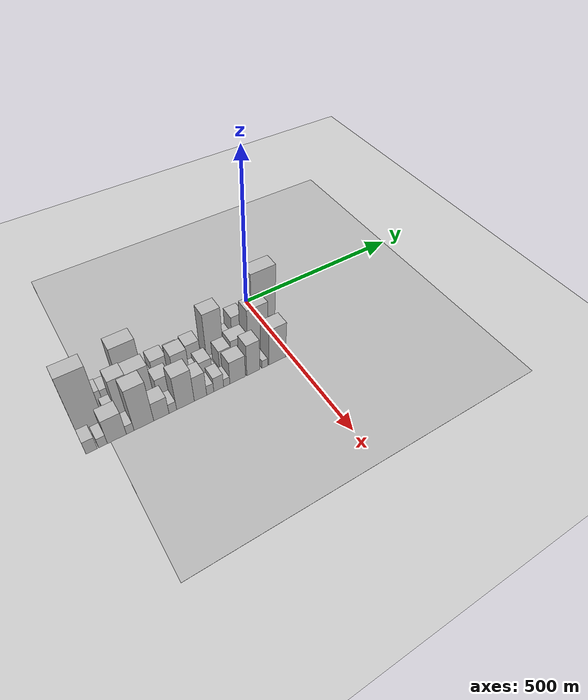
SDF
<sdf version="1.6">
 <world name="default">
  <include><name>ground_plane_1</name><uri>model://HANNAS_ground_plane</uri></include>
  <include>
   <name>ground_plane_2</name>
   <uri>model://HANNAS_ground_plane</uri>
   <pose>100 0 0  0 0 0</pose>
  </include>
  <model name="building_1">
   <static>1</static>
   <pose>100.0000 -544.7982 0 0.000000 0.000000 0.000000</pose>
   <link name="link">
    <pose>0 0 48.00 0 0 0</pose>
    <collision name="collision"><geometry><box><size>40.0000 30.4036 96.0000</size></box></geometry></collision>
    <visual name="visual">
     <cast_shadows>0</cast_shadows>
     <geometry><box><size>40.0000 30.4036 96.0000</size></box></geometry>
     <material>
      <script>
       <uri>model://HANNAS_wall/materials/scripts</uri>
       <uri>model://HANNAS_wall/materials/textures</uri>
       <name>vrc/HANNAS_wall</name>
      </script>
     </material>
    </visual>
   </link>
  </model>
  <model name="building_2">
   <static>1</static>
   <pose>100.0000 -515.6241 0 0.000000 0.000000 0.000000</pose>
   <link name="link">
    <pose>0 0 15.00 0 0 0</pose>
    <collision name="collision"><geometry><box><size>40.0000 17.9446 30.0000</size></box></geometry></collision>
    <visual name="visual">
     <cast_shadows>0</cast_shadows>
     <geometry><box><size>40.0000 17.9446 30.0000</size></box></geometry>
     <material>
      <script>
       <uri>model://HANNAS_wall/materials/scripts</uri>
       <uri>model://HANNAS_wall/materials/textures</uri>
       <name>vrc/HANNAS_wall</name>
      </script>
     </material>
    </visual>
   </link>
  </model>
  <model name="building_3">
   <static>1</static>
   <pose>100.0000 -491.0013 0 0.000000 0.000000 0.000000</pose>
   <link name="link">
    <pose>0 0 28.50 0 0 0</pose>
    <collision name="collision"><geometry><box><size>40.0000 31.3010 57.0000</size></box></geometry></collision>
    <visual name="visual">
     <cast_shadows>0</cast_shadows>
     <geometry><box><size>40.0000 31.3010 57.0000</size></box></geometry>
     <material>
      <script>
       <uri>model://HANNAS_wall/materials/scripts</uri>
       <uri>model://HANNAS_wall/materials/textures</uri>
       <name>vrc/HANNAS_wall</name>
      </script>
     </material>
    </visual>
   </link>
  </model>
  <model name="building_4">
   <static>1</static>
   <pose>100.0000 -459.8944 0 0.000000 0.000000 0.000000</pose>
   <link name="link">
    <pose>0 0 27.00 0 0 0</pose>
    <collision name="collision"><geometry><box><size>40.0000 30.9129 54.0000</size></box></geometry></collision>
    <visual name="visual">
     <cast_shadows>0</cast_shadows>
     <geometry><box><size>40.0000 30.9129 54.0000</size></box></geometry>
     <material>
      <script>
       <uri>model://HANNAS_wall/materials/scripts</uri>
       <uri>model://HANNAS_wall/materials/textures</uri>
       <name>vrc/HANNAS_wall</name>
      </script>
     </material>
    </visual>
   </link>
  </model>
  <model name="building_5">
   <static>1</static>
   <pose>100.0000 -438.7149 0 0.000000 0.000000 0.000000</pose>
   <link name="link">
    <pose>0 0 13.50 0 0 0</pose>
    <collision name="collision"><geometry><box><size>40.0000 11.4460 27.0000</size></box></geometry></collision>
    <visual name="visual">
     <cast_shadows>0</cast_shadows>
     <geometry><box><size>40.0000 11.4460 27.0000</size></box></geometry>
     <material>
      <script>
       <uri>model://HANNAS_wall/materials/scripts</uri>
       <uri>model://HANNAS_wall/materials/textures</uri>
       <name>vrc/HANNAS_wall</name>
      </script>
     </material>
    </visual>
   </link>
  </model>
  <model name="building_6">
   <static>1</static>
   <pose>100.0000 -396.0838 0 0.000000 0.000000 0.000000</pose>
   <link name="link">
    <pose>0 0 88.50 0 0 0</pose>
    <collision name="collision"><geometry><box><size>40.0000 63.8163 177.0000</size></box></geometry></collision>
    <visual name="visual">
     <cast_shadows>0</cast_shadows>
     <geometry><box><size>40.0000 63.8163 177.0000</size></box></geometry>
     <material>
      <script>
       <uri>model://HANNAS_wall/materials/scripts</uri>
       <uri>model://HANNAS_wall/materials/textures</uri>
       <name>vrc/HANNAS_wall</name>
      </script>
     </material>
    </visual>
   </link>
  </model>
  <model name="building_7">
   <static>1</static>
   <pose>100.0000 -349.6502 0 0.000000 0.000000 0.000000</pose>
   <link name="link">
    <pose>0 0 16.50 0 0 0</pose>
    <collision name="collision"><geometry><box><size>40.0000 17.0509 33.0000</size></box></geometry></collision>
    <visual name="visual">
     <cast_shadows>0</cast_shadows>
     <geometry><box><size>40.0000 17.0509 33.0000</size></box></geometry>
     <material>
      <script>
       <uri>model://HANNAS_wall/materials/scripts</uri>
       <uri>model://HANNAS_wall/materials/textures</uri>
       <name>vrc/HANNAS_wall</name>
      </script>
     </material>
    </visual>
   </link>
  </model>
  <model name="building_8">
   <static>1</static>
   <pose>100.0000 -319.9819 0 0.000000 0.000000 0.000000</pose>
   <link name="link">
    <pose>0 0 37.50 0 0 0</pose>
    <collision name="collision"><geometry><box><size>40.0000 42.2859 75.0000</size></box></geometry></collision>
    <visual name="visual">
     <cast_shadows>0</cast_shadows>
     <geometry><box><size>40.0000 42.2859 75.0000</size></box></geometry>
     <material>
      <script>
       <uri>model://HANNAS_wall/materials/scripts</uri>
       <uri>model://HANNAS_wall/materials/textures</uri>
       <name>vrc/HANNAS_wall</name>
      </script>
     </material>
    </visual>
   </link>
  </model>
  <model name="building_9">
   <static>1</static>
   <pose>100.0000 -273.5567 0 0.000000 0.000000 0.000000</pose>
   <link name="link">
    <pose>0 0 34.50 0 0 0</pose>
    <collision name="collision"><geometry><box><size>40.0000 34.5645 69.0000</size></box></geometry></collision>
    <visual name="visual">
     <cast_shadows>0</cast_shadows>
     <geometry><box><size>40.0000 34.5645 69.0000</size></box></geometry>
     <material>
      <script>
       <uri>model://HANNAS_wall/materials/scripts</uri>
       <uri>model://HANNAS_wall/materials/textures</uri>
       <name>vrc/HANNAS_wall</name>
      </script>
     </material>
    </visual>
   </link>
  </model>
  <model name="building_10">
   <static>1</static>
   <pose>100.0000 -226.8412 0 0.000000 0.000000 0.000000</pose>
   <link name="link">
    <pose>0 0 37.50 0 0 0</pose>
    <collision name="collision"><geometry><box><size>40.0000 38.8664 75.0000</size></box></geometry></collision>
    <visual name="visual">
     <cast_shadows>0</cast_shadows>
     <geometry><box><size>40.0000 38.8664 75.0000</size></box></geometry>
     <material>
      <script>
       <uri>model://HANNAS_wall/materials/scripts</uri>
       <uri>model://HANNAS_wall/materials/textures</uri>
       <name>vrc/HANNAS_wall</name>
      </script>
     </material>
    </visual>
   </link>
  </model>
  <model name="building_11">
   <static>1</static>
   <pose>100.0000 -202.9946 0 0.000000 0.000000 0.000000</pose>
   <link name="link">
    <pose>0 0 9.00 0 0 0</pose>
    <collision name="collision"><geometry><box><size>40.0000 8.8269 18.0000</size></box></geometry></collision>
    <visual name="visual">
     <cast_shadows>0</cast_shadows>
     <geometry><box><size>40.0000 8.8269 18.0000</size></box></geometry>
     <material>
      <script>
       <uri>model://HANNAS_wall/materials/scripts</uri>
       <uri>model://HANNAS_wall/materials/textures</uri>
       <name>vrc/HANNAS_wall</name>
      </script>
     </material>
    </visual>
   </link>
  </model>
  <model name="building_12">
   <static>1</static>
   <pose>100.0000 -166.4105 0 0.000000 0.000000 0.000000</pose>
   <link name="link">
    <pose>0 0 79.50 0 0 0</pose>
    <collision name="collision"><geometry><box><size>40.0000 50.3411 159.0000</size></box></geometry></collision>
    <visual name="visual">
     <cast_shadows>0</cast_shadows>
     <geometry><box><size>40.0000 50.3411 159.0000</size></box></geometry>
     <material>
      <script>
       <uri>model://HANNAS_wall/materials/scripts</uri>
       <uri>model://HANNAS_wall/materials/textures</uri>
       <name>vrc/HANNAS_wall</name>
      </script>
     </material>
    </visual>
   </link>
  </model>
  <model name="building_13">
   <static>1</static>
   <pose>100.0000 -127.2518 0 0.000000 0.000000 0.000000</pose>
   <link name="link">
    <pose>0 0 24.00 0 0 0</pose>
    <collision name="collision"><geometry><box><size>40.0000 27.9762 48.0000</size></box></geometry></collision>
    <visual name="visual">
     <cast_shadows>0</cast_shadows>
     <geometry><box><size>40.0000 27.9762 48.0000</size></box></geometry>
     <material>
      <script>
       <uri>model://HANNAS_wall/materials/scripts</uri>
       <uri>model://HANNAS_wall/materials/textures</uri>
       <name>vrc/HANNAS_wall</name>
      </script>
     </material>
    </visual>
   </link>
  </model>
  <model name="building_14">
   <static>1</static>
   <pose>100.0000 -94.5568 0 0.000000 0.000000 0.000000</pose>
   <link name="link">
    <pose>0 0 52.50 0 0 0</pose>
    <collision name="collision"><geometry><box><size>40.0000 37.4138 105.0000</size></box></geometry></collision>
    <visual name="visual">
     <cast_shadows>0</cast_shadows>
     <geometry><box><size>40.0000 37.4138 105.0000</size></box></geometry>
     <material>
      <script>
       <uri>model://HANNAS_wall/materials/scripts</uri>
       <uri>model://HANNAS_wall/materials/textures</uri>
       <name>vrc/HANNAS_wall</name>
      </script>
     </material>
    </visual>
   </link>
  </model>
  <model name="building_15">
   <static>1</static>
   <pose>100.0000 -64.4042 0 0.000000 0.000000 0.000000</pose>
   <link name="link">
    <pose>0 0 21.00 0 0 0</pose>
    <collision name="collision"><geometry><box><size>40.0000 22.8915 42.0000</size></box></geometry></collision>
    <visual name="visual">
     <cast_shadows>0</cast_shadows>
     <geometry><box><size>40.0000 22.8915 42.0000</size></box></geometry>
     <material>
      <script>
       <uri>model://HANNAS_wall/materials/scripts</uri>
       <uri>model://HANNAS_wall/materials/textures</uri>
       <name>vrc/HANNAS_wall</name>
      </script>
     </material>
    </visual>
   </link>
  </model>
  <model name="building_16">
   <static>1</static>
   <pose>100.0000 -16.2059 0 0.000000 0.000000 0.000000</pose>
   <link name="link">
    <pose>0 0 112.50 0 0 0</pose>
    <collision name="collision"><geometry><box><size>40.0000 73.5050 225.0000</size></box></geometry></collision>
    <visual name="visual">
     <cast_shadows>0</cast_shadows>
     <geometry><box><size>40.0000 73.5050 225.0000</size></box></geometry>
     <material>
      <script>
       <uri>model://HANNAS_wall/materials/scripts</uri>
       <uri>model://HANNAS_wall/materials/textures</uri>
       <name>vrc/HANNAS_wall</name>
      </script>
     </material>
    </visual>
   </link>
  </model>
  <model name="building_33">
   <static>1</static>
   <pose>155.0000 -526.5621 0 0.000000 0.000000 0.000000</pose>
   <link name="link">
    <pose>0 0 111.00 0 0 0</pose>
    <collision name="collision"><geometry><box><size>40.0000 66.8757 222.0000</size></box></geometry></collision>
    <visual name="visual">
     <cast_shadows>0</cast_shadows>
     <geometry><box><size>40.0000 66.8757 222.0000</size></box></geometry>
     <material>
      <script>
       <uri>model://HANNAS_wall/materials/scripts</uri>
       <uri>model://HANNAS_wall/materials/textures</uri>
       <name>vrc/HANNAS_wall</name>
      </script>
     </material>
    </visual>
   </link>
  </model>
  <model name="building_34">
   <static>1</static>
   <pose>155.0000 -472.5020 0 0.000000 0.000000 0.000000</pose>
   <link name="link">
    <pose>0 0 24.00 0 0 0</pose>
    <collision name="collision"><geometry><box><size>40.0000 25.2444 48.0000</size></box></geometry></collision>
    <visual name="visual">
     <cast_shadows>0</cast_shadows>
     <geometry><box><size>40.0000 25.2444 48.0000</size></box></geometry>
     <material>
      <script>
       <uri>model://HANNAS_wall/materials/scripts</uri>
       <uri>model://HANNAS_wall/materials/textures</uri>
       <name>vrc/HANNAS_wall</name>
      </script>
     </material>
    </visual>
   </link>
  </model>
  <model name="building_35">
   <static>1</static>
   <pose>155.0000 -438.7280 0 0.000000 0.000000 0.000000</pose>
   <link name="link">
    <pose>0 0 70.50 0 0 0</pose>
    <collision name="collision"><geometry><box><size>40.0000 42.3037 141.0000</size></box></geometry></collision>
    <visual name="visual">
     <cast_shadows>0</cast_shadows>
     <geometry><box><size>40.0000 42.3037 141.0000</size></box></geometry>
     <material>
      <script>
       <uri>model://HANNAS_wall/materials/scripts</uri>
       <uri>model://HANNAS_wall/materials/textures</uri>
       <name>vrc/HANNAS_wall</name>
      </script>
     </material>
    </visual>
   </link>
  </model>
  <model name="building_36">
   <static>1</static>
   <pose>155.0000 -390.2250 0 0.000000 0.000000 0.000000</pose>
   <link name="link">
    <pose>0 0 69.00 0 0 0</pose>
    <collision name="collision"><geometry><box><size>40.0000 54.7022 138.0000</size></box></geometry></collision>
    <visual name="visual">
     <cast_shadows>0</cast_shadows>
     <geometry><box><size>40.0000 54.7022 138.0000</size></box></geometry>
     <material>
      <script>
       <uri>model://HANNAS_wall/materials/scripts</uri>
       <uri>model://HANNAS_wall/materials/textures</uri>
       <name>vrc/HANNAS_wall</name>
      </script>
     </material>
    </visual>
   </link>
  </model>
  <model name="building_37">
   <static>1</static>
   <pose>155.0000 -334.4383 0 0.000000 0.000000 0.000000</pose>
   <link name="link">
    <pose>0 0 36.00 0 0 0</pose>
    <collision name="collision"><geometry><box><size>40.0000 40.8712 72.0000</size></box></geometry></collision>
    <visual name="visual">
     <cast_shadows>0</cast_shadows>
     <geometry><box><size>40.0000 40.8712 72.0000</size></box></geometry>
     <material>
      <script>
       <uri>model://HANNAS_wall/materials/scripts</uri>
       <uri>model://HANNAS_wall/materials/textures</uri>
       <name>vrc/HANNAS_wall</name>
      </script>
     </material>
    </visual>
   </link>
  </model>
  <model name="building_38">
   <static>1</static>
   <pose>155.0000 -284.8891 0 0.000000 0.000000 0.000000</pose>
   <link name="link">
    <pose>0 0 66.00 0 0 0</pose>
    <collision name="collision"><geometry><box><size>40.0000 42.2271 132.0000</size></box></geometry></collision>
    <visual name="visual">
     <cast_shadows>0</cast_shadows>
     <geometry><box><size>40.0000 42.2271 132.0000</size></box></geometry>
     <material>
      <script>
       <uri>model://HANNAS_wall/materials/scripts</uri>
       <uri>model://HANNAS_wall/materials/textures</uri>
       <name>vrc/HANNAS_wall</name>
      </script>
     </material>
    </visual>
   </link>
  </model>
  <model name="building_39">
   <static>1</static>
   <pose>155.0000 -248.8546 0 0.000000 0.000000 0.000000</pose>
   <link name="link">
    <pose>0 0 21.00 0 0 0</pose>
    <collision name="collision"><geometry><box><size>40.0000 21.8421 42.0000</size></box></geometry></collision>
    <visual name="visual">
     <cast_shadows>0</cast_shadows>
     <geometry><box><size>40.0000 21.8421 42.0000</size></box></geometry>
     <material>
      <script>
       <uri>model://HANNAS_wall/materials/scripts</uri>
       <uri>model://HANNAS_wall/materials/textures</uri>
       <name>vrc/HANNAS_wall</name>
      </script>
     </material>
    </visual>
   </link>
  </model>
  <model name="building_40">
   <static>1</static>
   <pose>155.0000 -220.5377 0 0.000000 0.000000 0.000000</pose>
   <link name="link">
    <pose>0 0 30.00 0 0 0</pose>
    <collision name="collision"><geometry><box><size>40.0000 34.7916 60.0000</size></box></geometry></collision>
    <visual name="visual">
     <cast_shadows>0</cast_shadows>
     <geometry><box><size>40.0000 34.7916 60.0000</size></box></geometry>
     <material>
      <script>
       <uri>model://HANNAS_wall/materials/scripts</uri>
       <uri>model://HANNAS_wall/materials/textures</uri>
       <name>vrc/HANNAS_wall</name>
      </script>
     </material>
    </visual>
   </link>
  </model>
  <model name="building_41">
   <static>1</static>
   <pose>155.0000 -197.2881 0 0.000000 0.000000 0.000000</pose>
   <link name="link">
    <pose>0 0 12.00 0 0 0</pose>
    <collision name="collision"><geometry><box><size>40.0000 11.7076 24.0000</size></box></geometry></collision>
    <visual name="visual">
     <cast_shadows>0</cast_shadows>
     <geometry><box><size>40.0000 11.7076 24.0000</size></box></geometry>
     <material>
      <script>
       <uri>model://HANNAS_wall/materials/scripts</uri>
       <uri>model://HANNAS_wall/materials/textures</uri>
       <name>vrc/HANNAS_wall</name>
      </script>
     </material>
    </visual>
   </link>
  </model>
  <model name="building_42">
   <static>1</static>
   <pose>155.0000 -164.1452 0 0.000000 0.000000 0.000000</pose>
   <link name="link">
    <pose>0 0 34.50 0 0 0</pose>
    <collision name="collision"><geometry><box><size>40.0000 34.5784 69.0000</size></box></geometry></collision>
    <visual name="visual">
     <cast_shadows>0</cast_shadows>
     <geometry><box><size>40.0000 34.5784 69.0000</size></box></geometry>
     <material>
      <script>
       <uri>model://HANNAS_wall/materials/scripts</uri>
       <uri>model://HANNAS_wall/materials/textures</uri>
       <name>vrc/HANNAS_wall</name>
      </script>
     </material>
    </visual>
   </link>
  </model>
  <model name="building_43">
   <static>1</static>
   <pose>155.0000 -122.0058 0 0.000000 0.000000 0.000000</pose>
   <link name="link">
    <pose>0 0 43.50 0 0 0</pose>
    <collision name="collision"><geometry><box><size>40.0000 49.7003 87.0000</size></box></geometry></collision>
    <visual name="visual">
     <cast_shadows>0</cast_shadows>
     <geometry><box><size>40.0000 49.7003 87.0000</size></box></geometry>
     <material>
      <script>
       <uri>model://HANNAS_wall/materials/scripts</uri>
       <uri>model://HANNAS_wall/materials/textures</uri>
       <name>vrc/HANNAS_wall</name>
      </script>
     </material>
    </visual>
   </link>
  </model>
  <model name="building_44">
   <static>1</static>
   <pose>155.0000 -66.9336 0 0.000000 0.000000 0.000000</pose>
   <link name="link">
    <pose>0 0 85.50 0 0 0</pose>
    <collision name="collision"><geometry><box><size>40.0000 60.4441 171.0000</size></box></geometry></collision>
    <visual name="visual">
     <cast_shadows>0</cast_shadows>
     <geometry><box><size>40.0000 60.4441 171.0000</size></box></geometry>
     <material>
      <script>
       <uri>model://HANNAS_wall/materials/scripts</uri>
       <uri>model://HANNAS_wall/materials/textures</uri>
       <name>vrc/HANNAS_wall</name>
      </script>
     </material>
    </visual>
   </link>
  </model>
  <model name="building_45">
   <static>1</static>
   <pose>155.0000 -14.1188 0 0.000000 0.000000 0.000000</pose>
   <link name="link">
    <pose>0 0 33.00 0 0 0</pose>
    <collision name="collision"><geometry><box><size>40.0000 35.1856 66.0000</size></box></geometry></collision>
    <visual name="visual">
     <cast_shadows>0</cast_shadows>
     <geometry><box><size>40.0000 35.1856 66.0000</size></box></geometry>
     <material>
      <script>
       <uri>model://HANNAS_wall/materials/scripts</uri>
       <uri>model://HANNAS_wall/materials/textures</uri>
       <name>vrc/HANNAS_wall</name>
      </script>
     </material>
    </visual>
   </link>
  </model>
  <model name="building_61">
   <static>1</static>
   <pose>210.0000 -546.2461 0 0.000000 0.000000 0.000000</pose>
   <link name="link">
    <pose>0 0 24.00 0 0 0</pose>
    <collision name="collision"><geometry><box><size>40.0000 27.5078 48.0000</size></box></geometry></collision>
    <visual name="visual">
     <cast_shadows>0</cast_shadows>
     <geometry><box><size>40.0000 27.5078 48.0000</size></box></geometry>
     <material>
      <script>
       <uri>model://HANNAS_wall/materials/scripts</uri>
       <uri>model://HANNAS_wall/materials/textures</uri>
       <name>vrc/HANNAS_wall</name>
      </script>
     </material>
    </visual>
   </link>
  </model>
  <model name="building_62">
   <static>1</static>
   <pose>210.0000 -518.6929 0 0.000000 0.000000 0.000000</pose>
   <link name="link">
    <pose>0 0 18.00 0 0 0</pose>
    <collision name="collision"><geometry><box><size>40.0000 21.5986 36.0000</size></box></geometry></collision>
    <visual name="visual">
     <cast_shadows>0</cast_shadows>
     <geometry><box><size>40.0000 21.5986 36.0000</size></box></geometry>
     <material>
      <script>
       <uri>model://HANNAS_wall/materials/scripts</uri>
       <uri>model://HANNAS_wall/materials/textures</uri>
       <name>vrc/HANNAS_wall</name>
      </script>
     </material>
    </visual>
   </link>
  </model>
  <model name="building_63">
   <static>1</static>
   <pose>210.0000 -484.3780 0 0.000000 0.000000 0.000000</pose>
   <link name="link">
    <pose>0 0 45.00 0 0 0</pose>
    <collision name="collision"><geometry><box><size>40.0000 47.0311 90.0000</size></box></geometry></collision>
    <visual name="visual">
     <cast_shadows>0</cast_shadows>
     <geometry><box><size>40.0000 47.0311 90.0000</size></box></geometry>
     <material>
      <script>
       <uri>model://HANNAS_wall/materials/scripts</uri>
       <uri>model://HANNAS_wall/materials/textures</uri>
       <name>vrc/HANNAS_wall</name>
      </script>
     </material>
    </visual>
   </link>
  </model>
  <model name="building_64">
   <static>1</static>
   <pose>210.0000 -451.0421 0 0.000000 0.000000 0.000000</pose>
   <link name="link">
    <pose>0 0 16.50 0 0 0</pose>
    <collision name="collision"><geometry><box><size>40.0000 19.6408 33.0000</size></box></geometry></collision>
    <visual name="visual">
     <cast_shadows>0</cast_shadows>
     <geometry><box><size>40.0000 19.6408 33.0000</size></box></geometry>
     <material>
      <script>
       <uri>model://HANNAS_wall/materials/scripts</uri>
       <uri>model://HANNAS_wall/materials/textures</uri>
       <name>vrc/HANNAS_wall</name>
      </script>
     </material>
    </visual>
   </link>
  </model>
  <model name="building_65">
   <static>1</static>
   <pose>210.0000 -415.9715 0 0.000000 0.000000 0.000000</pose>
   <link name="link">
    <pose>0 0 78.00 0 0 0</pose>
    <collision name="collision"><geometry><box><size>40.0000 50.5003 156.0000</size></box></geometry></collision>
    <visual name="visual">
     <cast_shadows>0</cast_shadows>
     <geometry><box><size>40.0000 50.5003 156.0000</size></box></geometry>
     <material>
      <script>
       <uri>model://HANNAS_wall/materials/scripts</uri>
       <uri>model://HANNAS_wall/materials/textures</uri>
       <name>vrc/HANNAS_wall</name>
      </script>
     </material>
    </visual>
   </link>
  </model>
  <model name="building_66">
   <static>1</static>
   <pose>210.0000 -370.6179 0 0.000000 0.000000 0.000000</pose>
   <link name="link">
    <pose>0 0 34.50 0 0 0</pose>
    <collision name="collision"><geometry><box><size>40.0000 40.2070 69.0000</size></box></geometry></collision>
    <visual name="visual">
     <cast_shadows>0</cast_shadows>
     <geometry><box><size>40.0000 40.2070 69.0000</size></box></geometry>
     <material>
      <script>
       <uri>model://HANNAS_wall/materials/scripts</uri>
       <uri>model://HANNAS_wall/materials/textures</uri>
       <name>vrc/HANNAS_wall</name>
      </script>
     </material>
    </visual>
   </link>
  </model>
  <model name="building_67">
   <static>1</static>
   <pose>210.0000 -340.2308 0 0.000000 0.000000 0.000000</pose>
   <link name="link">
    <pose>0 0 18.00 0 0 0</pose>
    <collision name="collision"><geometry><box><size>40.0000 20.5670 36.0000</size></box></geometry></collision>
    <visual name="visual">
     <cast_shadows>0</cast_shadows>
     <geometry><box><size>40.0000 20.5670 36.0000</size></box></geometry>
     <material>
      <script>
       <uri>model://HANNAS_wall/materials/scripts</uri>
       <uri>model://HANNAS_wall/materials/textures</uri>
       <name>vrc/HANNAS_wall</name>
      </script>
     </material>
    </visual>
   </link>
  </model>
  <model name="building_68">
   <static>1</static>
   <pose>210.0000 -306.0766 0 0.000000 0.000000 0.000000</pose>
   <link name="link">
    <pose>0 0 63.00 0 0 0</pose>
    <collision name="collision"><geometry><box><size>40.0000 47.7415 126.0000</size></box></geometry></collision>
    <visual name="visual">
     <cast_shadows>0</cast_shadows>
     <geometry><box><size>40.0000 47.7415 126.0000</size></box></geometry>
     <material>
      <script>
       <uri>model://HANNAS_wall/materials/scripts</uri>
       <uri>model://HANNAS_wall/materials/textures</uri>
       <name>vrc/HANNAS_wall</name>
      </script>
     </material>
    </visual>
   </link>
  </model>
  <model name="building_69">
   <static>1</static>
   <pose>210.0000 -265.0740 0 0.000000 0.000000 0.000000</pose>
   <link name="link">
    <pose>0 0 46.50 0 0 0</pose>
    <collision name="collision"><geometry><box><size>40.0000 34.2636 93.0000</size></box></geometry></collision>
    <visual name="visual">
     <cast_shadows>0</cast_shadows>
     <geometry><box><size>40.0000 34.2636 93.0000</size></box></geometry>
     <material>
      <script>
       <uri>model://HANNAS_wall/materials/scripts</uri>
       <uri>model://HANNAS_wall/materials/textures</uri>
       <name>vrc/HANNAS_wall</name>
      </script>
     </material>
    </visual>
   </link>
  </model>
  <model name="building_70">
   <static>1</static>
   <pose>210.0000 -237.9778 0 0.000000 0.000000 0.000000</pose>
   <link name="link">
    <pose>0 0 18.00 0 0 0</pose>
    <collision name="collision"><geometry><box><size>40.0000 19.9288 36.0000</size></box></geometry></collision>
    <visual name="visual">
     <cast_shadows>0</cast_shadows>
     <geometry><box><size>40.0000 19.9288 36.0000</size></box></geometry>
     <material>
      <script>
       <uri>model://HANNAS_wall/materials/scripts</uri>
       <uri>model://HANNAS_wall/materials/textures</uri>
       <name>vrc/HANNAS_wall</name>
      </script>
     </material>
    </visual>
   </link>
  </model>
  <model name="building_71">
   <static>1</static>
   <pose>210.0000 -214.0196 0 0.000000 0.000000 0.000000</pose>
   <link name="link">
    <pose>0 0 27.00 0 0 0</pose>
    <collision name="collision"><geometry><box><size>40.0000 27.9875 54.0000</size></box></geometry></collision>
    <visual name="visual">
     <cast_shadows>0</cast_shadows>
     <geometry><box><size>40.0000 27.9875 54.0000</size></box></geometry>
     <material>
      <script>
       <uri>model://HANNAS_wall/materials/scripts</uri>
       <uri>model://HANNAS_wall/materials/textures</uri>
       <name>vrc/HANNAS_wall</name>
      </script>
     </material>
    </visual>
   </link>
  </model>
  <model name="building_72">
   <static>1</static>
   <pose>210.0000 -191.1017 0 0.000000 0.000000 0.000000</pose>
   <link name="link">
    <pose>0 0 15.00 0 0 0</pose>
    <collision name="collision"><geometry><box><size>40.0000 17.8483 30.0000</size></box></geometry></collision>
    <visual name="visual">
     <cast_shadows>0</cast_shadows>
     <geometry><box><size>40.0000 17.8483 30.0000</size></box></geometry>
     <material>
      <script>
       <uri>model://HANNAS_wall/materials/scripts</uri>
       <uri>model://HANNAS_wall/materials/textures</uri>
       <name>vrc/HANNAS_wall</name>
      </script>
     </material>
    </visual>
   </link>
  </model>
  <model name="building_73">
   <static>1</static>
   <pose>210.0000 -159.5159 0 0.000000 0.000000 0.000000</pose>
   <link name="link">
    <pose>0 0 42.00 0 0 0</pose>
    <collision name="collision"><geometry><box><size>40.0000 45.3232 84.0000</size></box></geometry></collision>
    <visual name="visual">
     <cast_shadows>0</cast_shadows>
     <geometry><box><size>40.0000 45.3232 84.0000</size></box></geometry>
     <material>
      <script>
       <uri>model://HANNAS_wall/materials/scripts</uri>
       <uri>model://HANNAS_wall/materials/textures</uri>
       <name>vrc/HANNAS_wall</name>
      </script>
     </material>
    </visual>
   </link>
  </model>
  <model name="building_74">
   <static>1</static>
   <pose>210.0000 -113.6825 0 0.000000 0.000000 0.000000</pose>
   <link name="link">
    <pose>0 0 58.50 0 0 0</pose>
    <collision name="collision"><geometry><box><size>40.0000 38.3437 117.0000</size></box></geometry></collision>
    <visual name="visual">
     <cast_shadows>0</cast_shadows>
     <geometry><box><size>40.0000 38.3437 117.0000</size></box></geometry>
     <material>
      <script>
       <uri>model://HANNAS_wall/materials/scripts</uri>
       <uri>model://HANNAS_wall/materials/textures</uri>
       <name>vrc/HANNAS_wall</name>
      </script>
     </material>
    </visual>
   </link>
  </model>
  <model name="building_75">
   <static>1</static>
   <pose>210.0000 -78.9852 0 0.000000 0.000000 0.000000</pose>
   <link name="link">
    <pose>0 0 15.00 0 0 0</pose>
    <collision name="collision"><geometry><box><size>40.0000 17.0510 30.0000</size></box></geometry></collision>
    <visual name="visual">
     <cast_shadows>0</cast_shadows>
     <geometry><box><size>40.0000 17.0510 30.0000</size></box></geometry>
     <material>
      <script>
       <uri>model://HANNAS_wall/materials/scripts</uri>
       <uri>model://HANNAS_wall/materials/textures</uri>
       <name>vrc/HANNAS_wall</name>
      </script>
     </material>
    </visual>
   </link>
  </model>
  <model name="building_76">
   <static>1</static>
   <pose>210.0000 -41.6329 0 0.000000 0.000000 0.000000</pose>
   <link name="link">
    <pose>0 0 67.50 0 0 0</pose>
    <collision name="collision"><geometry><box><size>40.0000 51.6535 135.0000</size></box></geometry></collision>
    <visual name="visual">
     <cast_shadows>0</cast_shadows>
     <geometry><box><size>40.0000 51.6535 135.0000</size></box></geometry>
     <material>
      <script>
       <uri>model://HANNAS_wall/materials/scripts</uri>
       <uri>model://HANNAS_wall/materials/textures</uri>
       <name>vrc/HANNAS_wall</name>
      </script>
     </material>
    </visual>
   </link>
  </model>
  <model name="building_77">
   <static>1</static>
   <pose>210.0000 -10.7095 0 0.000000 0.000000 0.000000</pose>
   <link name="link">
    <pose>0 0 12.00 0 0 0</pose>
    <collision name="collision"><geometry><box><size>40.0000 10.1935 24.0000</size></box></geometry></collision>
    <visual name="visual">
     <cast_shadows>0</cast_shadows>
     <geometry><box><size>40.0000 10.1935 24.0000</size></box></geometry>
     <material>
      <script>
       <uri>model://HANNAS_wall/materials/scripts</uri>
       <uri>model://HANNAS_wall/materials/textures</uri>
       <name>vrc/HANNAS_wall</name>
      </script>
     </material>
    </visual>
   </link>
  </model>
 </world>
</sdf>
